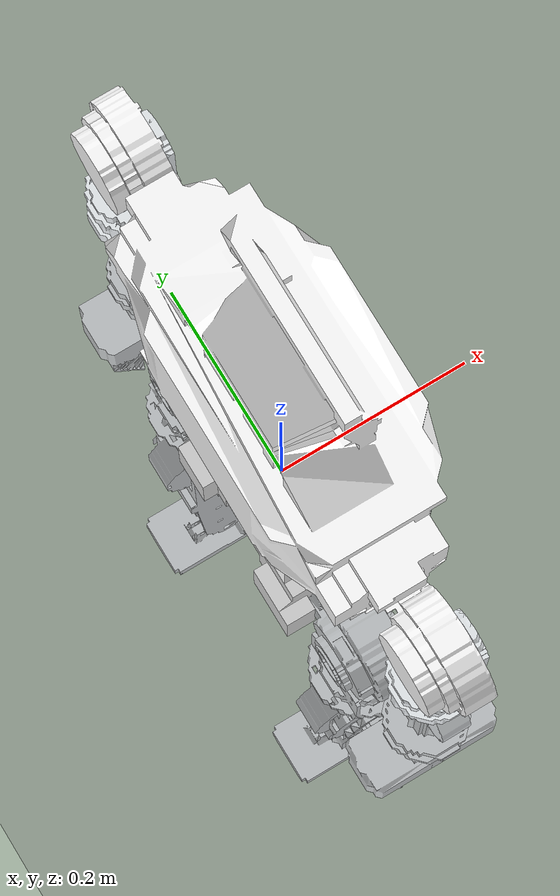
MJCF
<mujoco model="kbot">
  <option iterations="50" timestep="0.001" solver="PGS" gravity="0 0 -9.81" />

  <compiler angle="radian" meshdir="meshes" eulerseq="zyx" autolimits="true" />

  <default>
    <joint limited="true" damping="0.01" armature="0.01" frictionloss="0.01" />
    <geom condim="4" contype="1" conaffinity="15" friction="0.9 0.2 0.2" solref="0.001 2" />
    <motor ctrllimited="true" />
    <equality solref="0.001 2" />
    <default class="visualgeom">
      <geom material="visualgeom" condim="1" contype="0" conaffinity="0" />
    </default>
  </default>

  <asset>
    <mesh name="body1-part" file="body1-part.stl" />
    <mesh name="shoulder" file="shoulder.stl" />
    <mesh name="shoulder_2" file="shoulder_2.stl" />
    <mesh name="arm1_top" file="arm1_top.stl" />
    <mesh name="arm1_top_2" file="arm1_top_2.stl" />
    <mesh name="leg0_shell" file="leg0_shell.stl" />
    <mesh name="leg0_shell_2" file="leg0_shell_2.stl" />
    <mesh name="arm2_shell" file="arm2_shell.stl" />
    <mesh name="arm2_shell_2" file="arm2_shell_2.stl" />
    <mesh name="leg1_shell" file="leg1_shell.stl" />
    <mesh name="leg1_shell3" file="leg1_shell3.stl" />
    <mesh name="arm3_shell" file="arm3_shell.stl" />
    <mesh name="arm3_shell2" file="arm3_shell2.stl" />
    <mesh name="leg2_shell" file="leg2_shell.stl" />
    <mesh name="leg2_shell_2" file="leg2_shell_2.stl" />
    <mesh name="hand_shell" file="hand_shell.stl" />
    <mesh name="hand_shell_2" file="hand_shell_2.stl" />
    <mesh name="leg3_shell2" file="leg3_shell2.stl" />
    <mesh name="leg3_shell22" file="leg3_shell22.stl" />
    <mesh name="foot3" file="foot3.stl" />
    <mesh name="foot1" file="foot1.stl" />
    <texture name="texplane" type="2d" builtin="checker" rgb1=".0 .0 .0" rgb2=".8 .8 .8" width="100" height="100" />
    <material name="matplane" reflectance="0." texture="texplane" texrepeat="1 1" texuniform="true" />
    <material name="visualgeom" rgba="0.5 0.9 0.2 1" />
  </asset>

  <worldbody>
    <light directional="true" diffuse="0.4 0.4 0.4" specular="0.1 0.1 0.1" pos="0 0 5.0" dir="0 0 -1" castshadow="false" />
    <light directional="true" diffuse="0.6 0.6 0.6" specular="0.2 0.2 0.2" pos="0 0 4" dir="0 0 -1" />
    <geom name="ground" type="plane" pos="0 0 0" size="100 100 0.001" quat="1 0 0 0" material="matplane" condim="3" conaffinity="15" />
    <camera name="fixed" pos="0 -3.0 0.755" xyaxes="1 0 0 0 0 1" />
    <camera name="track" mode="trackcom" pos="0 -3.0 0.755" xyaxes="1 0 0 0 0 1" />
    <body name="root" pos="0 0 0.265" quat="1 0 0 0">
      <freejoint name="root" />
      <site name="imu" size="0.01" pos="0 0 0" />
      <body name="body1-part" quat="0.000563312 -0.000562864 0.707388 0.706825">
        <inertial pos="-0.00271358 -0.175393 -6.69105e-05" quat="0.70725 0.706955 0.00272432 0.00191781" mass="18.6965" diaginertia="1.36474 0.803078 0.589683" />
        <geom type="mesh" rgba="1 1 1 1" mesh="body1-part" contype="1" conaffinity="0" density="0" group="1" class="visualgeom" />
        <geom type="mesh" rgba="1 1 1 1" mesh="body1-part" />
        <geom pos="-1.06038e-05 0.0180896 0.1875" quat="0 2.32051e-08 1 2.32051e-08" type="mesh" rgba="1 1 1 1" mesh="shoulder" contype="1" conaffinity="0" density="0" group="1" class="visualgeom" />
        <geom type="mesh" rgba="1 1 1 1" mesh="shoulder" pos="-1.06038e-05 0.0180896 0.1875" quat="0 2.32051e-08 1 2.32051e-08" />
        <geom pos="-0.0225226 0.0181458 0.255" quat="-0.5 0.5 0.5 -0.5" type="mesh" rgba="0.898039 0.917647 0.929412 1" mesh="arm1_top" contype="1" conaffinity="0" density="0" group="1" class="visualgeom" />
        <geom type="mesh" rgba="0.898039 0.917647 0.929412 1" mesh="arm1_top" pos="-0.0225226 0.0181458 0.255" quat="-0.5 0.5 0.5 -0.5" />
        <geom pos="0.000977429 -0.121354 0.255" quat="-0.707107 0.707107 2.14852e-08 -2.53839e-09" type="mesh" rgba="0.898039 0.917647 0.929412 1" mesh="arm2_shell" contype="1" conaffinity="0" density="0" group="1" class="visualgeom" />
        <geom type="mesh" rgba="0.898039 0.917647 0.929412 1" mesh="arm2_shell" pos="0.000977429 -0.121354 0.255" quat="-0.707107 0.707107 2.14852e-08 -2.53839e-09" />
        <geom pos="-0.0250226 -0.219354 0.255" quat="0.5 0.5 0.5 0.5" type="mesh" rgba="0.898039 0.917647 0.929412 1" mesh="arm3_shell" contype="1" conaffinity="0" density="0" group="1" class="visualgeom" />
        <geom type="mesh" rgba="0.898039 0.917647 0.929412 1" mesh="arm3_shell" pos="-0.0250226 -0.219354 0.255" quat="0.5 0.5 0.5 0.5" />
        <geom pos="-0.00352257 -0.400854 0.255" quat="9.47343e-09 2.33435e-08 0.707107 0.707107" type="mesh" rgba="0.898039 0.917647 0.929412 1" mesh="hand_shell" contype="1" conaffinity="0" density="0" group="1" class="visualgeom" />
        <geom type="mesh" rgba="0.898039 0.917647 0.929412 1" mesh="hand_shell" pos="-0.00352257 -0.400854 0.255" quat="9.47343e-09 2.33435e-08 0.707107 0.707107" />
        <geom pos="-1.06038e-05 0.0180896 -0.1875" quat="2.32051e-08 0 0 -1" type="mesh" rgba="1 1 1 1" mesh="shoulder_2" contype="1" conaffinity="0" density="0" group="1" class="visualgeom" />
        <geom type="mesh" rgba="1 1 1 1" mesh="shoulder_2" pos="-1.06038e-05 0.0180896 -0.1875" quat="2.32051e-08 0 0 -1" />
        <geom pos="-0.0225226 0.0181458 -0.255" quat="-0.5 -0.5 -0.5 -0.5" type="mesh" rgba="0.898039 0.917647 0.929412 1" mesh="arm1_top_2" contype="1" conaffinity="0" density="0" group="1" class="visualgeom" />
        <geom type="mesh" rgba="0.898039 0.917647 0.929412 1" mesh="arm1_top_2" pos="-0.0225226 0.0181458 -0.255" quat="-0.5 -0.5 -0.5 -0.5" />
        <geom pos="-2.25584e-05 -0.121354 -0.255" quat="-9.47343e-09 -4.22904e-08 0.707107 -0.707107" type="mesh" rgba="0.898039 0.917647 0.929412 1" mesh="arm2_shell_2" contype="1" conaffinity="0" density="0" group="1" class="visualgeom" />
        <geom type="mesh" rgba="0.898039 0.917647 0.929412 1" mesh="arm2_shell_2" pos="-2.25584e-05 -0.121354 -0.255" quat="-9.47343e-09 -4.22904e-08 0.707107 -0.707107" />
        <geom pos="-0.0260226 -0.218854 -0.255" quat="0.5 0.5 0.5 0.5" type="mesh" rgba="0.898039 0.917647 0.929412 1" mesh="arm3_shell2" contype="1" conaffinity="0" density="0" group="1" class="visualgeom" />
        <geom type="mesh" rgba="0.898039 0.917647 0.929412 1" mesh="arm3_shell2" pos="-0.0260226 -0.218854 -0.255" quat="0.5 0.5 0.5 0.5" />
        <geom pos="-0.00452254 -0.400354 -0.255" quat="-4.92254e-08 3.53554e-08 0.707107 0.707107" type="mesh" rgba="0.898039 0.917647 0.929412 1" mesh="hand_shell_2" contype="1" conaffinity="0" density="0" group="1" class="visualgeom" />
        <geom type="mesh" rgba="0.898039 0.917647 0.929412 1" mesh="hand_shell_2" pos="-0.00452254 -0.400354 -0.255" quat="-4.92254e-08 3.53554e-08 0.707107 0.707107" />
        <body name="leg0_shell" pos="-1.06085e-05 -0.43201 0.0877" quat="2.32051e-08 0 1 -7.32051e-08">
          <inertial pos="-0.00374632 -5.30704e-10 -0.0681251" quat="0.999982 0 -0.00597565 0" mass="1.32345" diaginertia="0.0018859 0.00142483 0.00129962" />
          <joint name="L_hip_y" pos="0 0 0" axis="0 0 1" range="-1.5708 1.5708" actuatorfrcrange="-60 60" />
          <geom type="mesh" rgba="0.898039 0.917647 0.929412 1" mesh="leg0_shell" contype="1" conaffinity="0" density="0" group="1" class="visualgeom" />
          <geom type="mesh" rgba="0.898039 0.917647 0.929412 1" mesh="leg0_shell" />
          <body name="leg1_shell" pos="0.0265 -1.51659e-09 -0.0695" quat="0.5 -0.5 -0.5 0.5">
            <inertial pos="-0.116471 0.00323117 0.025411" quat="0.162954 0.777613 0.0974626 0.599387" mass="1.36077" diaginertia="0.00293018 0.00283394 0.00156523" />
            <joint name="L_hip_x" pos="0 0 0" axis="0 0 1" range="-0.349066 3.18523" actuatorfrcrange="-40 40" />
            <geom type="mesh" rgba="0.898039 0.917647 0.929412 1" mesh="leg1_shell" contype="1" conaffinity="0" density="0" group="1" class="visualgeom" />
            <geom type="mesh" rgba="0.898039 0.917647 0.929412 1" mesh="leg1_shell" />
            <body name="leg2_shell" pos="-0.1565 0.000119814 0.0275" quat="0.707107 0 0.707107 0">
              <inertial pos="4.08555e-07 0.000531684 -0.137308" quat="0.707084 -0.00547271 0.00548785 0.707088" mass="1.82092" diaginertia="0.00422586 0.00311812 0.00206385" />
              <joint name="L_hip_z" pos="0 0 0" axis="0 0 1" range="-1.5708 1.5708" actuatorfrcrange="-40 40" />
              <geom type="mesh" rgba="0.898039 0.917647 0.929412 1" mesh="leg2_shell" contype="1" conaffinity="0" density="0" group="1" class="visualgeom" />
              <geom type="mesh" rgba="0.898039 0.917647 0.929412 1" mesh="leg2_shell" />
              <body name="leg3_shell2" pos="0 0.0342 -0.1425" quat="0.707107 0.707107 0 0">
                <inertial pos="0.00103299 -0.12548 0.0366711" quat="0.691727 0.665165 0.198925 -0.19874" mass="1.17968" diaginertia="0.00753953 0.00750258 0.00111461" />
                <joint name="L_knee" pos="0 0 0" axis="0 0 1" range="-1.57 0" actuatorfrcrange="-60 60" />
                <geom type="mesh" rgba="0.898039 0.917647 0.929412 1" mesh="leg3_shell2" contype="1" conaffinity="0" density="0" group="1" class="visualgeom" />
                <geom type="mesh" rgba="0.898039 0.917647 0.929412 1" mesh="leg3_shell2" />
                <body name="foot1" pos="0 -0.3 0.0702" quat="1 4.64102e-08 0 0">
                  <inertial pos="0.0210264 -0.018472 -0.0193043" quat="0.505269 0.504957 0.48518 0.504304" mass="0.545747" diaginertia="0.00202977 0.00187214 0.000259286" />
                  <joint name="L_ankle" pos="0 0 0" axis="0 0 -1" range="-0.698132 0.698132" actuatorfrcrange="-17 17" frictionloss="0.1" />
                  <geom type="mesh" rgba="0.898039 0.917647 0.929412 1" mesh="foot1" contype="1" conaffinity="0" density="0" group="1" class="visualgeom" />
                  <geom type="mesh" rgba="0.898039 0.917647 0.929412 1" mesh="foot1" />
                </body>
              </body>
            </body>
          </body>
        </body>
        <body name="leg0_shell_2" pos="-1.06003e-05 -0.43201 -0.0882" quat="0 2.32051e-08 -5e-08 -1">
          <inertial pos="-0.00374632 -5.30704e-10 -0.0676251" quat="0.999982 0 -0.00597565 0" mass="1.32345" diaginertia="0.0018859 0.00142483 0.00129962" />
          <joint name="R_hip_y" pos="0 0 0" axis="0 0 1" range="-1.5708 1.5708" actuatorfrcrange="-60 60" />
          <geom type="mesh" rgba="0.898039 0.917647 0.929412 1" mesh="leg0_shell_2" contype="1" conaffinity="0" density="0" group="1" class="visualgeom" />
          <geom type="mesh" rgba="0.898039 0.917647 0.929412 1" mesh="leg0_shell_2" />
          <body name="leg1_shell3" pos="0.0265 -1.51659e-09 -0.069" quat="0.5 0.5 -0.5 -0.5">
            <inertial pos="-0.116295 -0.00323118 0.025411" quat="-0.155155 0.779695 -0.0910895 0.599754" mass="1.36077" diaginertia="0.00290553 0.00280871 0.00156592" />
            <joint name="R_hip_x" pos="0 0 0" axis="0 0 1" range="-0.349066 3.18523" actuatorfrcrange="-40 40" />
            <geom type="mesh" rgba="0.898039 0.917647 0.929412 1" mesh="leg1_shell3" contype="1" conaffinity="0" density="0" group="1" class="visualgeom" />
            <geom type="mesh" rgba="0.898039 0.917647 0.929412 1" mesh="leg1_shell3" />
            <body name="leg2_shell_2" pos="-0.1565 -0.000119814 0.0275" quat="0 -0.707107 0 -0.707107">
              <inertial pos="4.08555e-07 0.000531684 -0.137308" quat="0.707084 -0.00547271 0.00548785 0.707088" mass="1.82092" diaginertia="0.00422586 0.00311812 0.00206385" />
              <joint name="R_hip_z" pos="0 0 0" axis="0 0 1" range="-1.5708 1.5708" actuatorfrcrange="-40 40" />
              <geom type="mesh" rgba="0.898039 0.917647 0.929412 1" mesh="leg2_shell_2" contype="1" conaffinity="0" density="0" group="1" class="visualgeom" />
              <geom type="mesh" rgba="0.898039 0.917647 0.929412 1" mesh="leg2_shell_2" />
              <body name="leg3_shell22" pos="0 0.0342 -0.1425" quat="0.707107 0.707107 0 0">
                <inertial pos="-0.00103303 -0.12548 0.0366712" quat="0.691727 0.665164 -0.198928 0.198742" mass="1.17968" diaginertia="0.00753955 0.0075026 0.00111462" />
                <joint name="R_knee" pos="0 0 0" axis="0 0 -1" range="-1.57 0" actuatorfrcrange="-60 60" />
                <geom type="mesh" rgba="0.898039 0.917647 0.929412 1" mesh="leg3_shell22" contype="1" conaffinity="0" density="0" group="1" class="visualgeom" />
                <geom type="mesh" rgba="0.898039 0.917647 0.929412 1" mesh="leg3_shell22" />
                <body name="foot3" pos="1.07672e-08 -0.3 0.0272" quat="0 -2.32051e-08 1 -2.32051e-08">
                  <inertial pos="0.0210264 -0.018472 -0.0236957" quat="0.504957 0.505269 0.504304 0.48518" mass="0.545747" diaginertia="0.00202977 0.00187214 0.000259286" />
                  <joint name="R_ankle" pos="0 0 0" axis="0 0 -1" range="-0.698132 0.698132" actuatorfrcrange="-17 17" frictionloss="0.1" />
                  <geom type="mesh" rgba="0.898039 0.917647 0.929412 1" mesh="foot3" contype="1" conaffinity="0" density="0" group="1" class="visualgeom" />
                  <geom type="mesh" rgba="0.898039 0.917647 0.929412 1" mesh="foot3" />
                </body>
              </body>
            </body>
          </body>
        </body>
      </body>
    </body>
  </worldbody>

  <actuator>
    <motor name="L_hip_y" joint="L_hip_y" ctrllimited="true" ctrlrange="-60 60" gear="1" />
    <motor name="L_hip_x" joint="L_hip_x" ctrllimited="true" ctrlrange="-40 40" gear="1" />
    <motor name="L_hip_z" joint="L_hip_z" ctrllimited="true" ctrlrange="-40 40" gear="1" />
    <motor name="L_knee" joint="L_knee" ctrllimited="true" ctrlrange="-60 60" gear="1" />
    <motor name="L_ankle" joint="L_ankle" ctrllimited="true" ctrlrange="-17 17" gear="1" />
    <motor name="R_hip_y" joint="R_hip_y" ctrllimited="true" ctrlrange="-60 60" gear="1" />
    <motor name="R_hip_x" joint="R_hip_x" ctrllimited="true" ctrlrange="-40 40" gear="1" />
    <motor name="R_hip_z" joint="R_hip_z" ctrllimited="true" ctrlrange="-40 40" gear="1" />
    <motor name="R_knee" joint="R_knee" ctrllimited="true" ctrlrange="-60 60" gear="1" />
    <motor name="R_ankle" joint="R_ankle" ctrllimited="true" ctrlrange="-17 17" gear="1" />
  </actuator>

  <sensor>
    <actuatorpos name="L_hip_y_p" actuator="L_hip_y" />
    <actuatorvel name="L_hip_y_v" actuator="L_hip_y" />
    <actuatorfrc name="L_hip_y_f" actuator="L_hip_y" noise="0.001" />
    <actuatorpos name="L_hip_x_p" actuator="L_hip_x" />
    <actuatorvel name="L_hip_x_v" actuator="L_hip_x" />
    <actuatorfrc name="L_hip_x_f" actuator="L_hip_x" noise="0.001" />
    <actuatorpos name="L_hip_z_p" actuator="L_hip_z" />
    <actuatorvel name="L_hip_z_v" actuator="L_hip_z" />
    <actuatorfrc name="L_hip_z_f" actuator="L_hip_z" noise="0.001" />
    <actuatorpos name="L_knee_p" actuator="L_knee" />
    <actuatorvel name="L_knee_v" actuator="L_knee" />
    <actuatorfrc name="L_knee_f" actuator="L_knee" noise="0.001" />
    <actuatorpos name="L_ankle_p" actuator="L_ankle" />
    <actuatorvel name="L_ankle_v" actuator="L_ankle" />
    <actuatorfrc name="L_ankle_f" actuator="L_ankle" noise="0.001" />
    <actuatorpos name="R_hip_y_p" actuator="R_hip_y" />
    <actuatorvel name="R_hip_y_v" actuator="R_hip_y" />
    <actuatorfrc name="R_hip_y_f" actuator="R_hip_y" noise="0.001" />
    <actuatorpos name="R_hip_x_p" actuator="R_hip_x" />
    <actuatorvel name="R_hip_x_v" actuator="R_hip_x" />
    <actuatorfrc name="R_hip_x_f" actuator="R_hip_x" noise="0.001" />
    <actuatorpos name="R_hip_z_p" actuator="R_hip_z" />
    <actuatorvel name="R_hip_z_v" actuator="R_hip_z" />
    <actuatorfrc name="R_hip_z_f" actuator="R_hip_z" noise="0.001" />
    <actuatorpos name="R_knee_p" actuator="R_knee" />
    <actuatorvel name="R_knee_v" actuator="R_knee" />
    <actuatorfrc name="R_knee_f" actuator="R_knee" noise="0.001" />
    <actuatorpos name="R_ankle_p" actuator="R_ankle" />
    <actuatorvel name="R_ankle_v" actuator="R_ankle" />
    <actuatorfrc name="R_ankle_f" actuator="R_ankle" noise="0.001" />
    <framequat name="orientation" objtype="site" noise="0.001" objname="imu" />
    <gyro name="angular-velocity" site="imu" noise="0.005" cutoff="34.9" />
  </sensor>

    <keyframe>
    <key name="default" qpos="0 0 1.05 1. 0.0 0.0 0.0 0.23 0.0 0.0 -0.441 -0.195 -0.23 0.0 0.0 -0.441 -0.195"/>
    <key name="standing" qpos="0 0 1.075 1. 0.0 0.0 0.0 0 0.0 0.0 0 0 0 0.0 0.0 0 0"/>
  </keyframe>
</mujoco>
